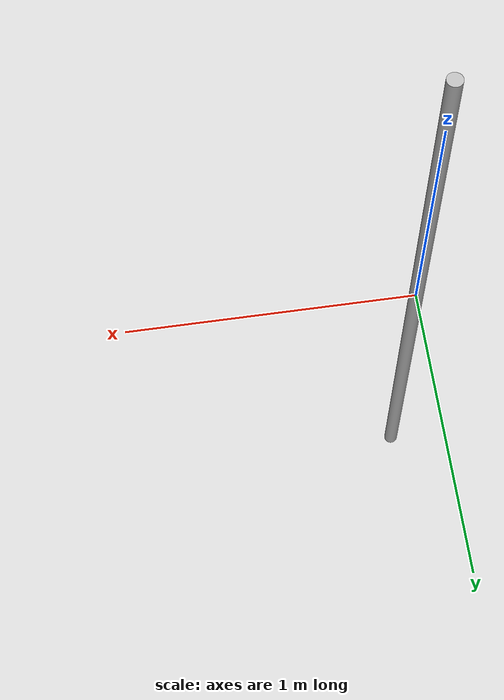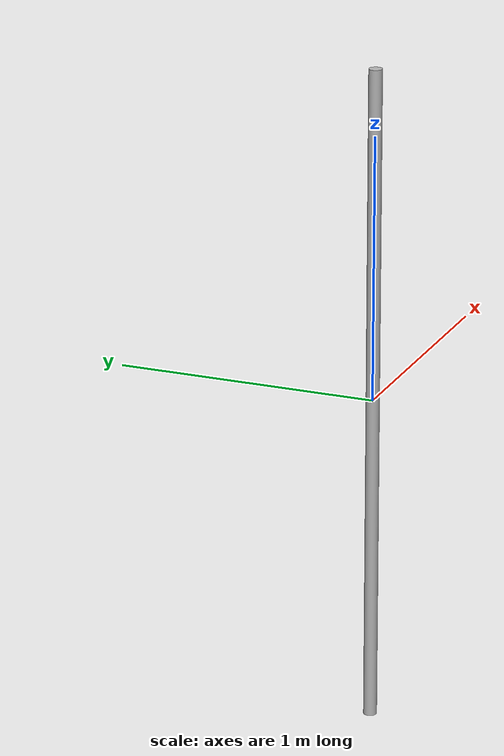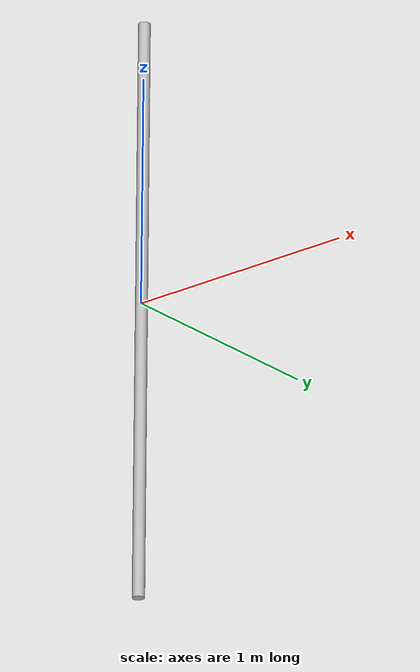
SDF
<?xml version="1.0"?>
<sdf version='1.9'>
  <model name='preq_pole'>
        <static>true</static>

        <link name='preq_pole'>
            <collision name='preq_pole_collision'>
                <geometry>
                <mesh>
                    <uri>model://preq_pole/preq_pole.stl</uri>
                </mesh>
                </geometry>
            </collision>

            <visual name='preq_pole_visual'>
                <geometry>
                <mesh>
                    <uri>model://preq_pole/preq_pole.stl</uri>
                </mesh>
                </geometry>
            </visual>

        </link>
  </model>
</sdf>
